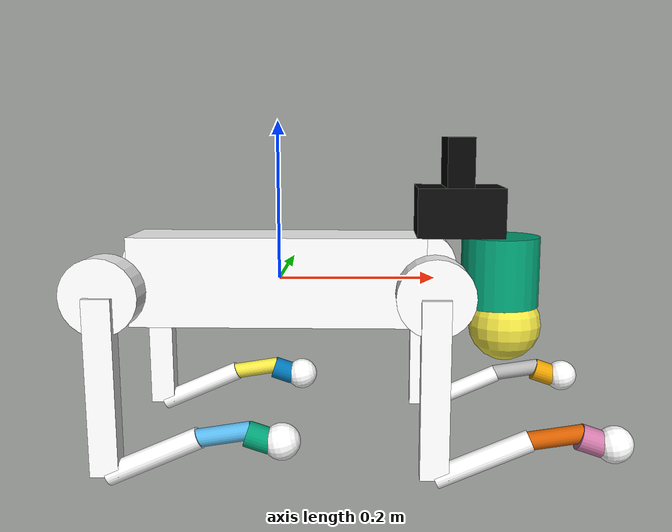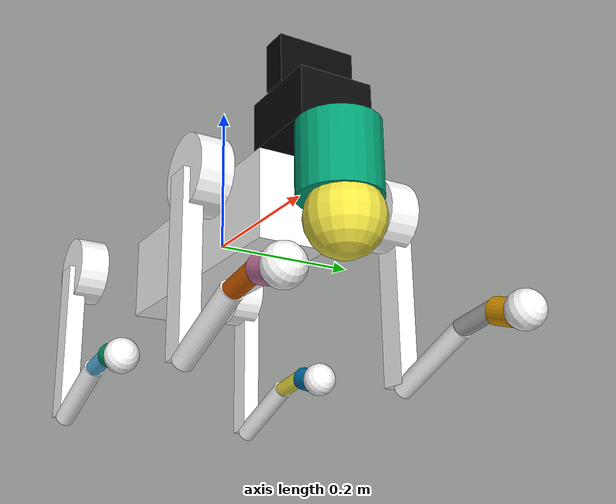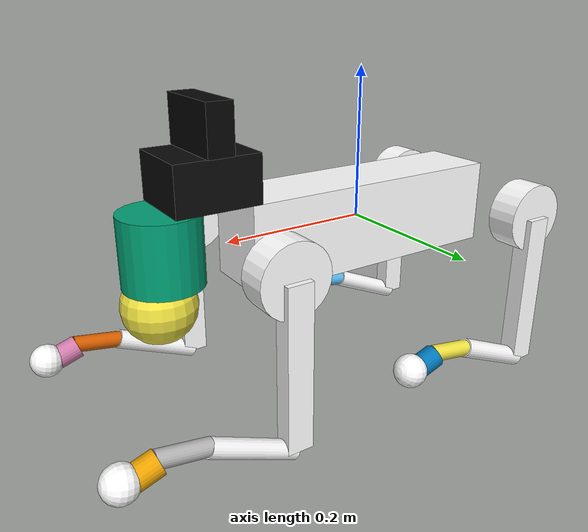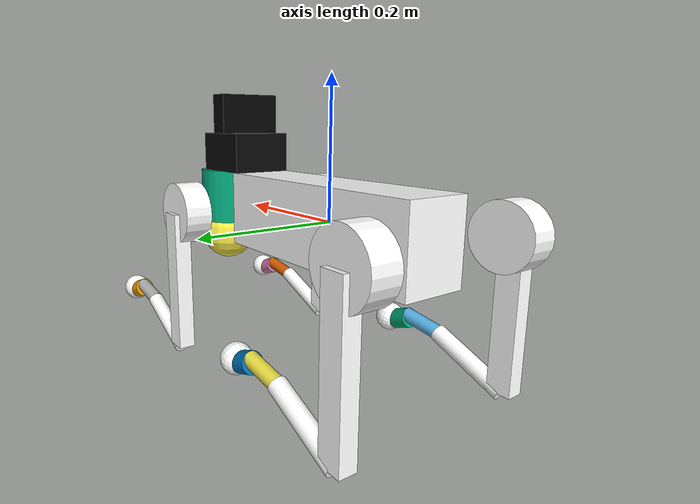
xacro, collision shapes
<?xml version="1.0" encoding="utf-8"?>
<robot
  name="go2_with_odin1" xmlns:xacro="http://ros.org/wiki/xacro">
  <link
    name="base_link">
    <inertial>
      <origin
        xyz="0.021112 0 -0.005366"
        rpy="0 0 0" />
      <mass
        value="6.921" />
      <inertia
        ixx="0.02448"
        ixy="0.00012166"
        ixz="0.0014849"
        iyy="0.098077"
        iyz="-3.12E-05"
        izz="0.107" />
    </inertial>
    <visual>
      <origin
        xyz="0 0 0"
        rpy="0 0 0" />
      <geometry>
        <mesh
          filename="package://go2_description/dae/base_link.dae" />
      </geometry>
      <material
        name="">
        <color
          rgba="1 1 1 1" />
      </material>
    </visual>
    <collision>
      <origin rpy="0 0 0" xyz="0 0 0" />
      <geometry>
        <box size="0.3762 0.0935 0.114" />
      </geometry>
    </collision>
  </link>
    <!-- 添加虚拟根链接 -->
    <link name="dummy_base_link">
        <visual>
            <geometry>
                <box size="0.001 0.001 0.001"/> <!-- 极小尺寸 -->
            </geometry>
        </visual>
    </link>
    <!-- 添加固定关节连接虚拟链接和原base_link -->
    <joint name="dummy_joint" type="fixed">
        <parent link="dummy_base_link"/>
        <child link="base_link"/>
        <origin xyz="0 0 0" rpy="0 0 0"/>
    </joint>

  <link
    name="Head_upper">
    <inertial>
      <origin
        xyz="0 0 0"
        rpy="0 0 0" />
      <mass
        value="0.001" />
      <inertia
        ixx="9.6e-06"
        ixy="0"
        ixz="0"
        iyy="9.6e-06"
        iyz="0"
        izz="9.6e-06" />
    </inertial>
    <collision>
      <origin
        xyz="0 0 0"
        rpy="0 0 0" />
      <geometry>
        <cylinder radius="0.05" length="0.09" />
      </geometry>
    </collision>
  </link>
  <joint
    name="Head_upper_joint"
    type="fixed" dont_collapse="true">
    <origin
      xyz="0.285 0 0.01"
      rpy="0 0 0" />
    <parent
      link="base_link" />
    <child
      link="Head_upper" />
    <axis
      xyz="0 0 0" />
  </joint>
  <link
    name="Head_lower">
    <inertial>
      <origin
        xyz="0 0 0"
        rpy="0 0 0" />
      <mass
        value="0.001" />
      <inertia
        ixx="9.6e-06"
        ixy="0"
        ixz="0"
        iyy="9.6e-06"
        iyz="0"
        izz="9.6e-06" />
    </inertial>
    <collision>
      <origin
        xyz="0 0 0"
        rpy="0 0 0" />
      <geometry>
        <sphere radius="0.047" />
      </geometry>
    </collision>
  </link>
  <joint
    name="Head_lower_joint"
    type="fixed" dont_collapse="true">
    <origin
      xyz="0.008 0 -0.07"
      rpy="0 0 0" />
    <parent
      link="Head_upper" />
    <child
      link="Head_lower" />
    <axis
      xyz="0 0 0" />
  </joint>
  <link
    name="FL_hip">
    <inertial>
      <origin
        xyz="-0.0054 0.00194 -0.000105"
        rpy="0 0 0" />
      <mass
        value="0.678" />
      <inertia
        ixx="0.00048"
        ixy="-3.01E-06"
        ixz="1.11E-06"
        iyy="0.000884"
        iyz="-1.42E-06"
        izz="0.000596" />
    </inertial>
    <visual>
      <origin
        xyz="0 0 0"
        rpy="0 0 0" />
      <geometry>
        <mesh
          filename="package://go2_description/dae/hip.dae" />
      </geometry>
      <material
        name="">
        <color
          rgba="1 1 1 1" />
      </material>
    </visual>
    <collision>
      <origin rpy="1.5707963267948966 0 0" xyz="0 0.08 0" />
      <geometry>
        <cylinder length="0.04" radius="0.046" />
      </geometry>
    </collision>
  </link>
  <joint
    name="FL_hip_joint"
    type="revolute">
    <origin
      xyz="0.1934 0.0465 0"
      rpy="0 0 0" />
    <parent
      link="base_link" />
    <child
      link="FL_hip" />
    <axis
      xyz="1 0 0" />
    <limit
      lower="-1.0472"
      upper="1.0472"
      effort="23.7"
      velocity="30.1" />
  </joint>
  <link
    name="FL_thigh">
    <inertial>
      <origin
        xyz="-0.00374 -0.0223 -0.0327"
        rpy="0 0 0" />
      <mass
        value="1.152" />
      <inertia
        ixx="0.00584"
        ixy="8.72E-05"
        ixz="-0.000289"
        iyy="0.0058"
        iyz="0.000808"
        izz="0.00103" />
    </inertial>
    <visual>
      <origin
        xyz="0 0 0"
        rpy="0 0 0" />
      <geometry>
        <mesh
          filename="package://go2_description/dae/thigh.dae" />
      </geometry>
      <material
        name="">
        <color
          rgba="1 1 1 1" />
      </material>
    </visual>
    <collision>
      <origin rpy="0 1.5707963267948966 0" xyz="0 0 -0.1065" />
      <geometry>
        <box size="0.213 0.0245 0.034" />
      </geometry>
    </collision>
  </link>
  <joint
    name="FL_thigh_joint"
    type="revolute">
    <origin
      xyz="0 0.0955 0"
      rpy="0 0 0" />
    <parent
      link="FL_hip" />
    <child
      link="FL_thigh" />
    <axis
      xyz="0 1 0" />
    <limit
      lower="-1.5708"
      upper="3.4907"
      effort="23.7"
      velocity="30.1" />
  </joint>
  <link
    name="FL_calf">
    <inertial>
      <origin
        xyz="0.00548 -0.000975 -0.115"
        rpy="0 0 0" />
      <mass
        value="0.154" />
      <inertia
        ixx="0.00108"
        ixy="3.4E-07"
        ixz="1.72E-05"
        iyy="0.0011"
        iyz="8.28E-06"
        izz="3.29E-05" />
    </inertial>
    <visual>
      <origin
        xyz="0 0 0"
        rpy="0 0 0" />
      <geometry>
        <mesh
          filename="package://go2_description/dae/calf.dae" />
      </geometry>
      <material
        name="">
        <color
          rgba="1 1 1 1" />
      </material>
    </visual>
    <collision>
      <origin rpy="0 -0.21 0" xyz="0.008 0 -0.06" />
      <geometry>
        <cylinder length="0.12" radius="0.012" />
      </geometry>
    </collision>
  </link>
  <joint
    name="FL_calf_joint"
    type="revolute">
    <origin
      xyz="0 0 -0.213"
      rpy="0 0 0" />
    <parent
      link="FL_thigh" />
    <child
      link="FL_calf" />
    <axis
      xyz="0 1 0" />
    <limit
      lower="-2.7227"
      upper="-0.83776"
      effort="45.43"
      velocity="15.70" />
  </joint>
  <link
    name="FL_calflower">
    <collision>
      <origin rpy="0 0 0" xyz="0 0 0" />
      <geometry>
        <cylinder length="0.065" radius="0.011" />
      </geometry>
    </collision>
  </link>
  <joint
    name="FL_calflower_joint"
    type="fixed">
    <origin
      xyz="0.020 0 -0.148"
      rpy="0 0.05 0" />
    <parent
      link="FL_calf" />
    <child
      link="FL_calflower" />
    <axis
      xyz="0 0 0" />
  </joint>
  <link
    name="FL_calflower1">
    <collision>
      <origin rpy="0 0 0" xyz="0 0 0" />
      <geometry>
        <cylinder length="0.03" radius="0.0155" />
      </geometry>
    </collision>
  </link>
  <joint
    name="FL_calflower1_joint"
    type="fixed">
    <origin
      xyz="-0.01 0 -0.04"
      rpy="0 0.48 0" />
    <parent
      link="FL_calflower" />
    <child
      link="FL_calflower1" />
    <axis
      xyz="0 0 0" />
  </joint>
  <link
    name="FL_foot">
    <inertial>
      <origin
        xyz="0 0 0"
        rpy="0 0 0" />
      <mass
        value="0.04" />
      <inertia
        ixx="9.6e-06"
        ixy="0"
        ixz="0"
        iyy="9.6e-06"
        iyz="0"
        izz="9.6e-06" />
    </inertial>
    <visual>
      <origin
        xyz="0 0 0"
        rpy="0 0 0" />
      <geometry>
        <mesh
          filename="package://go2_description/dae/foot.dae" />
      </geometry>
      <material
        name="">
        <color
          rgba="1 1 1 1" />
      </material>
    </visual>
    <collision>
      <origin rpy="0 0 0" xyz="-0.002 0 0" />
      <geometry>
        <sphere radius="0.022" />
      </geometry>
    </collision>
  </link>
  <joint
    name="FL_foot_joint"
    type="fixed" dont_collapse="true">
    <origin
      xyz="0 0 -0.213"
      rpy="0 0 0" />
    <parent
      link="FL_calf" />
    <child
      link="FL_foot" />
    <axis
      xyz="0 0 0" />
  </joint>
  <link
    name="FR_hip">
    <inertial>
      <origin
        xyz="-0.0054 -0.00194 -0.000105"
        rpy="0 0 0" />
      <mass
        value="0.678" />
      <inertia
        ixx="0.00048"
        ixy="3.01E-06"
        ixz="1.11E-06"
        iyy="0.000884"
        iyz="1.42E-06"
        izz="0.000596" />
    </inertial>
    <visual>
      <origin
        xyz="0 0 0"
        rpy="3.1415 0 0" />
      <geometry>
        <mesh
          filename="package://go2_description/dae/hip.dae" />
      </geometry>
      <material
        name="">
        <color
          rgba="1 1 1 1" />
      </material>
    </visual>
    <collision>
      <origin rpy="1.5707963267948966 0 0" xyz="0 -0.08 0" />
      <geometry>
        <cylinder length="0.04" radius="0.046" />
      </geometry>
    </collision>
  </link>
  <joint
    name="FR_hip_joint"
    type="revolute">
    <origin
      xyz="0.1934 -0.0465 0"
      rpy="0 0 0" />
    <parent
      link="base_link" />
    <child
      link="FR_hip" />
    <axis
      xyz="1 0 0" />
    <limit
      lower="-1.0472"
      upper="1.0472"
      effort="23.7"
      velocity="30.1" />
  </joint>
  <link
    name="FR_thigh">
    <inertial>
      <origin
        xyz="-0.00374 0.0223 -0.0327"
        rpy="0 0 0" />
      <mass
        value="1.152" />
      <inertia
        ixx="0.00584"
        ixy="-8.72E-05"
        ixz="-0.000289"
        iyy="0.0058"
        iyz="-0.000808"
        izz="0.00103" />
    </inertial>
    <visual>
      <origin
        xyz="0 0 0"
        rpy="0 0 0" />
      <geometry>
        <mesh
          filename="package://go2_description/dae/thigh_mirror.dae" />
      </geometry>
      <material
        name="">
        <color
          rgba="1 1 1 1" />
      </material>
    </visual>
    <collision>
      <origin rpy="0 1.5707963267948966 0" xyz="0 0 -0.1065" />
      <geometry>
        <box size="0.213 0.0245 0.034" />
      </geometry>
    </collision>
  </link>
  <joint
    name="FR_thigh_joint"
    type="revolute">
    <origin
      xyz="0 -0.0955 0"
      rpy="0 0 0" />
    <parent
      link="FR_hip" />
    <child
      link="FR_thigh" />
    <axis
      xyz="0 1 0" />
    <limit
      lower="-1.5708"
      upper="3.4907"
      effort="23.7"
      velocity="30.1" />
  </joint>
  <link
    name="FR_calf">
    <inertial>
      <origin
        xyz="0.00548 0.000975 -0.115"
        rpy="0 0 0" />
      <mass
        value="0.154" />
      <inertia
        ixx="0.00108"
        ixy="-3.4E-07"
        ixz="1.72E-05"
        iyy="0.0011"
        iyz="-8.28E-06"
        izz="3.29E-05" />
    </inertial>
    <visual>
      <origin
        xyz="0 0 0"
        rpy="0 0 0" />
      <geometry>
        <mesh
          filename="package://go2_description/dae/calf_mirror.dae" />
      </geometry>
      <material
        name="">
        <color
          rgba="1 1 1 1" />
      </material>
    </visual>
    <collision>
      <origin rpy="0 -0.2 0" xyz="0.01 0 -0.06" />
      <geometry>
        <cylinder length="0.12" radius="0.013" />
      </geometry>
    </collision>
  </link>
  <joint
    name="FR_calf_joint"
    type="revolute">
    <origin
      xyz="0 0 -0.213"
      rpy="0 0 0" />
    <parent
      link="FR_thigh" />
    <child
      link="FR_calf" />
    <axis
      xyz="0 1 0" />
    <limit
      lower="-2.7227"
      upper="-0.83776"
      effort="45.43"
      velocity="15.70" />
  </joint>
  <link
    name="FR_calflower">
    <collision>
      <origin rpy="0 0 0" xyz="0 0 0" />
      <geometry>
        <cylinder length="0.065" radius="0.011" />
      </geometry>
    </collision>
  </link>
  <joint
    name="FR_calflower_joint"
    type="fixed">
    <origin
      xyz="0.020 0 -0.148"
      rpy="0 0.05 0" />
    <parent
      link="FR_calf" />
    <child
      link="FR_calflower" />
    <axis
      xyz="0 0 0" />
  </joint>
  <link
    name="FR_calflower1">
    <collision>
      <origin rpy="0 0 0" xyz="0 0 0" />
      <geometry>
        <cylinder length="0.03" radius="0.0155" />
      </geometry>
    </collision>
  </link>
  <joint
    name="FR_calflower1_joint"
    type="fixed">
    <origin
      xyz="-0.01 0 -0.04"
      rpy="0 0.48 0" />
    <parent
      link="FR_calflower" />
    <child
      link="FR_calflower1" />
    <axis
      xyz="0 0 0" />
  </joint>
  <link
    name="FR_foot">
    <inertial>
      <origin
        xyz="0 0 0"
        rpy="0 0 0" />
      <mass
        value="0.04" />
      <inertia
        ixx="9.6e-06"
        ixy="0"
        ixz="0"
        iyy="9.6e-06"
        iyz="0"
        izz="9.6e-06" />
    </inertial>
    <visual>
      <origin
        xyz="0 0 0"
        rpy="0 0 0" />
      <geometry>
        <mesh
          filename="package://go2_description/dae/foot.dae" />
      </geometry>
      <material
        name="">
        <color
          rgba="1 1 1 1" />
      </material>
    </visual>
    <collision>
      <origin rpy="0 0 0" xyz="-0.002 0 0" />
      <geometry>
        <sphere radius="0.022" />
      </geometry>
    </collision>
  </link>
  <joint
    name="FR_foot_joint"
    type="fixed" dont_collapse="true">
    <origin
      xyz="0 0 -0.213"
      rpy="0 0 0" />
    <parent
      link="FR_calf" />
    <child
      link="FR_foot" />
    <axis
      xyz="0 0 0" />
  </joint>
  <link
    name="RL_hip">
    <inertial>
      <origin
        xyz="0.0054 0.00194 -0.000105"
        rpy="0 0 0" />
      <mass
        value="0.678" />
      <inertia
        ixx="0.00048"
        ixy="3.01E-06"
        ixz="-1.11E-06"
        iyy="0.000884"
        iyz="-1.42E-06"
        izz="0.000596" />
    </inertial>
    <visual>
      <origin
        xyz="0 0 0"
        rpy="0 3.1415 0" />
      <geometry>
        <mesh
          filename="package://go2_description/dae/hip.dae" />
      </geometry>
      <material
        name="">
        <color
          rgba="1 1 1 1" />
      </material>
    </visual>
    <collision>
      <origin rpy="1.5707963267948966 0 0" xyz="0 0.08 0" />
      <geometry>
        <cylinder length="0.04" radius="0.046" />
      </geometry>
    </collision>
  </link>
  <joint
    name="RL_hip_joint"
    type="revolute">
    <origin
      xyz="-0.1934 0.0465 0"
      rpy="0 0 0" />
    <parent
      link="base_link" />
    <child
      link="RL_hip" />
    <axis
      xyz="1 0 0" />
    <limit
      lower="-1.0472"
      upper="1.0472"
      effort="23.7"
      velocity="30.1" />
  </joint>
  <link
    name="RL_thigh">
    <inertial>
      <origin
        xyz="-0.00374 -0.0223 -0.0327"
        rpy="0 0 0" />
      <mass
        value="1.152" />
      <inertia
        ixx="0.00584"
        ixy="8.72E-05"
        ixz="-0.000289"
        iyy="0.0058"
        iyz="0.000808"
        izz="0.00103" />
    </inertial>
    <visual>
      <origin
        xyz="0 0 0"
        rpy="0 0 0" />
      <geometry>
        <mesh
          filename="package://go2_description/dae/thigh.dae" />
      </geometry>
      <material
        name="">
        <color
          rgba="1 1 1 1" />
      </material>
    </visual>
    <collision>
      <origin rpy="0 1.5707963267948966 0" xyz="0 0 -0.1065" />
      <geometry>
        <box size="0.213 0.0245 0.034" />
      </geometry>
    </collision>
  </link>
  <joint
    name="RL_thigh_joint"
    type="revolute">
    <origin
      xyz="0 0.0955 0"
      rpy="0 0 0" />
    <parent
      link="RL_hip" />
    <child
      link="RL_thigh" />
    <axis
      xyz="0 1 0" />
    <limit
      lower="-0.5236"
      upper="4.5379"
      effort="23.7"
      velocity="30.1" />
  </joint>
  <link
    name="RL_calf">
    <inertial>
      <origin
        xyz="0.00548 -0.000975 -0.115"
        rpy="0 0 0" />
      <mass
        value="0.154" />
      <inertia
        ixx="0.00108"
        ixy="3.4E-07"
        ixz="1.72E-05"
        iyy="0.0011"
        iyz="8.28E-06"
        izz="3.29E-05" />
    </inertial>
    <visual>
      <origin
        xyz="0 0 0"
        rpy="0 0 0" />
      <geometry>
        <mesh
          filename="package://go2_description/dae/calf.dae" />
      </geometry>
      <material
        name="">
        <color
          rgba="1 1 1 1" />
      </material>
    </visual>
    <collision>
      <origin rpy="0 -0.2 0" xyz="0.01 0 -0.06" />
      <geometry>
        <cylinder length="0.12" radius="0.013" />
      </geometry>
    </collision>
  </link>
  <joint
    name="RL_calf_joint"
    type="revolute">
    <origin
      xyz="0 0 -0.213"
      rpy="0 0 0" />
    <parent
      link="RL_thigh" />
    <child
      link="RL_calf" />
    <axis
      xyz="0 1 0" />
    <limit
      lower="-2.7227"
      upper="-0.83776"
      effort="45.43"
      velocity="15.70" />
  </joint>
  <link
    name="RL_calflower">
    <collision>
      <origin rpy="0 0 0" xyz="0 0 0" />
      <geometry>
        <cylinder length="0.065" radius="0.011" />
      </geometry>
    </collision>
  </link>
  <joint
    name="RL_calflower_joint"
    type="fixed">
    <origin
      xyz="0.020 0 -0.148"
      rpy="0 0.05 0" />
    <parent
      link="RL_calf" />
    <child
      link="RL_calflower" />
    <axis
      xyz="0 0 0" />
  </joint>
  <link
    name="RL_calflower1">
    <collision>
      <origin rpy="0 0 0" xyz="0 0 0" />
      <geometry>
        <cylinder length="0.03" radius="0.0155" />
      </geometry>
    </collision>
  </link>
  <joint
    name="RL_calflower1_joint"
    type="fixed">
    <origin
      xyz="-0.01 0 -0.04"
      rpy="0 0.48 0" />
    <parent
      link="RL_calflower" />
    <child
      link="RL_calflower1" />
    <axis
      xyz="0 0 0" />
  </joint>
  <link
    name="RL_foot">
    <inertial>
      <origin
        xyz="0 0 0"
        rpy="0 0 0" />
      <mass
        value="0.04" />
      <inertia
        ixx="9.6e-06"
        ixy="0"
        ixz="0"
        iyy="9.6e-06"
        iyz="0"
        izz="9.6e-06" />
    </inertial>
    <visual>
      <origin
        xyz="0 0 0"
        rpy="0 0 0" />
      <geometry>
        <mesh
          filename="package://go2_description/dae/foot.dae" />
      </geometry>
      <material
        name="">
        <color
          rgba="1 1 1 1" />
      </material>
    </visual>
    <collision>
      <origin rpy="0 0 0" xyz="-0.002 0 0" />
      <geometry>
        <sphere radius="0.022" />
      </geometry>
    </collision>
  </link>
  <joint
    name="RL_foot_joint"
    type="fixed" dont_collapse="true">
    <origin
      xyz="0 0 -0.213"
      rpy="0 0 0" />
    <parent
      link="RL_calf" />
    <child
      link="RL_foot" />
    <axis
      xyz="0 0 0" />
  </joint>
  <link
    name="RR_hip">
    <inertial>
      <origin
        xyz="0.0054 -0.00194 -0.000105"
        rpy="0 0 0" />
      <mass
        value="0.678" />
      <inertia
        ixx="0.00048"
        ixy="-3.01E-06"
        ixz="-1.11E-06"
        iyy="0.000884"
        iyz="1.42E-06"
        izz="0.000596" />
    </inertial>
    <visual>
      <origin
        xyz="0 0 0"
        rpy="3.1415 3.1415 0" />
      <geometry>
        <mesh
          filename="package://go2_description/dae/hip.dae" />
      </geometry>
      <material
        name="">
        <color
          rgba="1 1 1 1" />
      </material>
    </visual>
    <collision>
      <origin rpy="1.5707963267948966 0 0" xyz="0 -0.08 0" />
      <geometry>
        <cylinder length="0.04" radius="0.046" />
      </geometry>
    </collision>
  </link>
  <joint
    name="RR_hip_joint"
    type="revolute">
    <origin
      xyz="-0.1934 -0.0465 0"
      rpy="0 0 0" />
    <parent
      link="base_link" />
    <child
      link="RR_hip" />
    <axis
      xyz="1 0 0" />
    <limit
      lower="-1.0472"
      upper="1.0472"
      effort="23.7"
      velocity="30.1" />
  </joint>
  <link
    name="RR_thigh">
    <inertial>
      <origin
        xyz="-0.00374 0.0223 -0.0327"
        rpy="0 0 0" />
      <mass
        value="1.152" />
      <inertia
        ixx="0.00584"
        ixy="-8.72E-05"
        ixz="-0.000289"
        iyy="0.0058"
        iyz="-0.000808"
        izz="0.00103" />
    </inertial>
    <visual>
      <origin
        xyz="0 0 0"
        rpy="0 0 0" />
      <geometry>
        <mesh
          filename="package://go2_description/dae/thigh_mirror.dae" />
      </geometry>
      <material
        name="">
        <color
          rgba="1 1 1 1" />
      </material>
    </visual>
    <collision>
      <origin rpy="0 1.5707963267948966 0" xyz="0 0 -0.1065" />
      <geometry>
        <box size="0.213 0.0245 0.034" />
      </geometry>
    </collision>
  </link>
  <joint
    name="RR_thigh_joint"
    type="revolute">
    <origin
      xyz="0 -0.0955 0"
      rpy="0 0 0" />
    <parent
      link="RR_hip" />
    <child
      link="RR_thigh" />
    <axis
      xyz="0 1 0" />
    <limit
      lower="-0.5236"
      upper="4.5379"
      effort="23.7"
      velocity="30.1" />
  </joint>
  <link
    name="RR_calf">
    <inertial>
      <origin
        xyz="0.00548 0.000975 -0.115"
        rpy="0 0 0" />
      <mass
        value="0.154" />
      <inertia
        ixx="0.00108"
        ixy="-3.4E-07"
        ixz="1.72E-05"
        iyy="0.0011"
        iyz="-8.28E-06"
        izz="3.29E-05" />
    </inertial>
    <visual>
      <origin
        xyz="0 0 0"
        rpy="0 0 0" />
      <geometry>
        <mesh
          filename="package://go2_description/dae/calf_mirror.dae" />
      </geometry>
      <material
        name="">
        <color
          rgba="1 1 1 1" />
      </material>
    </visual>
    <collision>
      <origin rpy="0 -0.2 0" xyz="0.01 0 -0.06" />
      <geometry>
        <cylinder length="0.12" radius="0.013" />
      </geometry>
    </collision>
  </link>
  <joint
    name="RR_calf_joint"
    type="revolute">
    <origin
      xyz="0 0 -0.213"
      rpy="0 0 0" />
    <parent
      link="RR_thigh" />
    <child
      link="RR_calf" />
    <axis
      xyz="0 1 0" />
    <limit
      lower="-2.7227"
      upper="-0.83776"
      effort="45.43"
      velocity="15.70" />
  </joint>
  <link
    name="RR_calflower">
    <collision>
      <origin rpy="0 0 0" xyz="0 0 0" />
      <geometry>
        <cylinder length="0.065" radius="0.011" />
      </geometry>
    </collision>
  </link>
  <joint
    name="RR_calflower_joint"
    type="fixed">
    <origin
      xyz="0.020 0 -0.148"
      rpy="0 0.05 0" />
    <parent
      link="RR_calf" />
    <child
      link="RR_calflower" />
    <axis
      xyz="0 0 0" />
  </joint>
  <link
    name="RR_calflower1">
    <collision>
      <origin rpy="0 0 0" xyz="0 0 0" />
      <geometry>
        <cylinder length="0.03" radius="0.0155" />
      </geometry>
    </collision>
  </link>
  <joint
    name="RR_calflower1_joint"
    type="fixed">
    <origin
      xyz="-0.01 0 -0.04"
      rpy="0 0.48 0" />
    <parent
      link="RR_calflower" />
    <child
      link="RR_calflower1" />
    <axis
      xyz="0 0 0" />
  </joint>
  <link
    name="RR_foot">
    <inertial>
      <origin
        xyz="0 0 0"
        rpy="0 0 0" />
      <mass
        value="0.04" />
      <inertia
        ixx="9.6e-06"
        ixy="0"
        ixz="0"
        iyy="9.6e-06"
        iyz="0"
        izz="9.6e-06" />
    </inertial>
    <visual>
      <origin
        xyz="0 0 0"
        rpy="0 0 0" />
      <geometry>
        <mesh
          filename="package://go2_description/dae/foot.dae" />
      </geometry>
      <material
        name="">
        <color
          rgba="1 1 1 1" />
      </material>
    </visual>
    <collision>
      <origin rpy="0 0 0" xyz="-0.002 0 0" />
      <geometry>
        <sphere radius="0.022" />
      </geometry>
    </collision>
  </link>
  <joint
    name="RR_foot_joint"
    type="fixed" dont_collapse="true">
    <origin
      xyz="0 0 -0.213"
      rpy="0 0 0" />
    <parent
      link="RR_calf" />
    <child
      link="RR_foot" />
    <axis
      xyz="0 0 0" />
  </joint>
  <link
    name="imu">
    <inertial>
      <origin
        xyz="0 0 0"
        rpy="0 0 0" />
      <mass
        value="0" />
      <inertia
        ixx="0"
        ixy="0"
        ixz="0"
        iyy="0"
        iyz="0"
        izz="0" />
    </inertial>
  </link>
  <joint
    name="imu_joint"
    type="fixed">
    <origin
      xyz="-0.02557 0 0.04232"
      rpy="0 0 0" />
    <parent
      link="base_link" />
    <child
      link="imu" />
    <axis
      xyz="0 0 0" />
  </joint>
  <link
    name="radar">
    <inertial>
      <origin
        xyz="0 0 0"
        rpy="0 0 0" />
      <mass
        value="0" />
      <inertia
        ixx="0"
        ixy="0"
        ixz="0"
        iyy="0"
        iyz="0"
        izz="0" />
    </inertial>
  </link>
  <joint
    name="radar_joint"
    type="fixed">
    <origin
      xyz="0.28945 0 -0.046825"
      rpy="0 2.8782 0" />
    <parent
      link="base_link" />
    <child
      link="radar" />
    <axis
      xyz="0 0 0" />
  </joint>

  <joint name="odin1_mount_joint" type="fixed">
    <parent link="base_link"/>
    <child link="odin1_mount_link"/>
    <!--
      Actual installation video: the 109 mm base plate runs forward over the
      Go2 head.  Its centre is approximately x=0.23 m on the top surface.
    -->
    <origin xyz="0.23 0 0.057" rpy="0 0 0"/>
  </joint>

  <link name="odin1_mount_link">
    <visual name="odin1_official_mount_visual">
      <origin xyz="0.0585 0 -0.064642159"
              rpy="1.57079632679 0 1.57079632679"/>
      <geometry>
        <mesh
          filename="package://go2_description/meshes/odin1_mount.stl"
          scale="0.001 0.001 0.001"/>
      </geometry>
      <material name="odin1_mount_black">
        <color rgba="0.035 0.035 0.035 1"/>
      </material>
    </visual>
    <collision name="odin1_mount_envelope_collision">
      <origin xyz="0 0 0.030829" rpy="0 0 0"/>
      <geometry>
        <!-- Conservative AABB after the video-verified axis mapping. -->
        <box size="0.109 0.0946 0.061658"/>
      </geometry>
    </collision>
  </link>

  <joint name="odin1_sensor_joint" type="fixed">
    <parent link="odin1_mount_link"/>
    <child link="odin1_base_link"/>
    <origin xyz="0.00888 -0.02897 0.070918" rpy="0 0 0"/>
  </joint>

  <link name="odin1_base_link">
    <inertial>
      <!-- Device centre of mass is approximated by its official envelope. -->
      <origin xyz="-0.01118 0.02897 0.02174" rpy="0 0 0"/>
      <mass value="0.280"/>
      <inertia
        ixx="0.000323026667" ixy="0" ixz="0"
        iyy="0.000115879167" iyz="0"
        izz="0.000259519167"/>
    </inertial>
    <visual name="odin1_dimensioned_envelope_visual">
      <!-- Official device envelope; no public housing mesh is available. -->
      <origin xyz="-0.01118 0.02897 0.02174" rpy="0 0 0"/>
      <geometry>
        <box size="0.0335 0.100 0.062"/>
      </geometry>
      <material name="odin1_device_black">
        <color rgba="0.02 0.02 0.02 1"/>
      </material>
    </visual>
    <collision name="odin1_device_envelope_collision">
      <origin xyz="-0.01118 0.02897 0.02174" rpy="0 0 0"/>
      <geometry>
        <box size="0.0335 0.100 0.062"/>
      </geometry>
    </collision>
  </link>

  <joint name="odin1_lidar_joint" type="fixed">
    <parent link="odin1_base_link"/>
    <child link="odin1_lidar_link"/>
    <origin xyz="-0.02663 0.03447 0.02174" rpy="0 0 0"/>
  </joint>
  <link name="odin1_lidar_link"/>
</robot>
